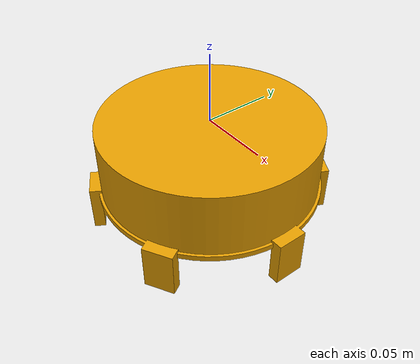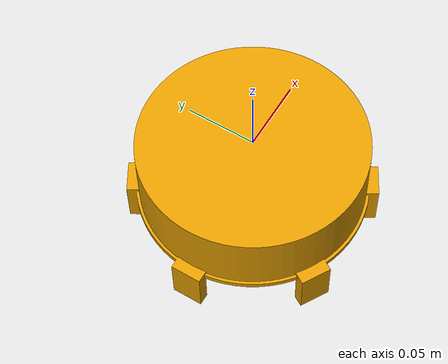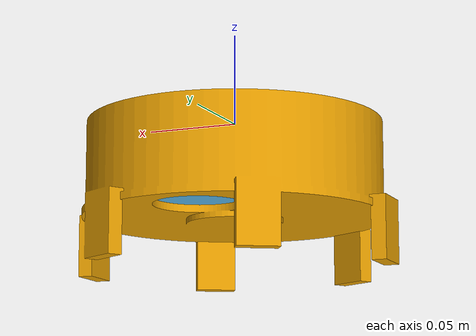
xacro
<?xml version="1.0"?>
<robot xmlns:xacro="http://www.ros.org/wiki/xacro" name="uav_ball_drop_mechanism">

  <!-- Base link: Upper mounting plate to UAV chassis -->
  <link name="ball_drop_base_link">
    <inertial>
      <origin xyz="0 0 -0.026" rpy="0 0 0"/>
      <mass value="0.350"/>
      <inertia ixx="0.000639" ixy="0.0" ixz="0.0" iyy="0.000639" iyz="0.0" izz="0.001120"/>
    </inertial>
    <visual>
      <origin xyz="0 0 0" rpy="0 0 0"/>
      <geometry>
        <mesh filename="package://uav_ball_drop/models/uav_ball_drop_mechanism/meshes/housing.obj" scale="1 1 1"/>
      </geometry>
    </visual>
    <collision>
      <origin xyz="0 0 -0.026" rpy="0 0 0"/>
      <geometry>
        <cylinder radius="0.080" length="0.052"/>
      </geometry>
    </collision>
  </link>

  <!-- Internal Revolving Carousel -->
  <link name="ball_drop_carousel_link">
    <inertial>
      <origin xyz="0 0 -0.026" rpy="0 0 0"/>
      <mass value="0.150"/>
      <inertia ixx="0.000220" ixy="0.0" ixz="0.0" iyy="0.000220" iyz="0.0" izz="0.000380"/>
    </inertial>
    <visual>
      <origin xyz="0 0 0" rpy="0 0 0"/>
      <geometry>
        <mesh filename="package://uav_ball_drop/models/uav_ball_drop_mechanism/meshes/rotor.obj" scale="1 1 1"/>
      </geometry>
    </visual>
    <collision>
      <origin xyz="0 0 -0.026" rpy="0 0 0"/>
      <geometry>
        <cylinder radius="0.022" length="0.044"/>
      </geometry>
    </collision>
  </link>

  <!-- Carousel Revolute Actuator Joint -->
  <joint name="carousel_joint" type="continuous">
    <parent link="ball_drop_base_link"/>
    <child link="ball_drop_carousel_link"/>
    <origin xyz="0 0 0" rpy="0 0 0"/>
    <axis xyz="0 0 1"/>
    <limit effort="10.0" velocity="6.28"/>
    <dynamics damping="0.05" friction="0.02"/>
  </joint>

  <!-- Drop Aperture Virtual Frame (Exit point for dropped payload balls) -->
  <link name="ball_drop_exit_frame"/>
  <joint name="ball_drop_exit_joint" type="fixed">
    <parent link="ball_drop_base_link"/>
    <child link="ball_drop_exit_frame"/>
    <origin xyz="0 0.048 -0.058" rpy="0 0 0"/>
  </joint>

</robot>
